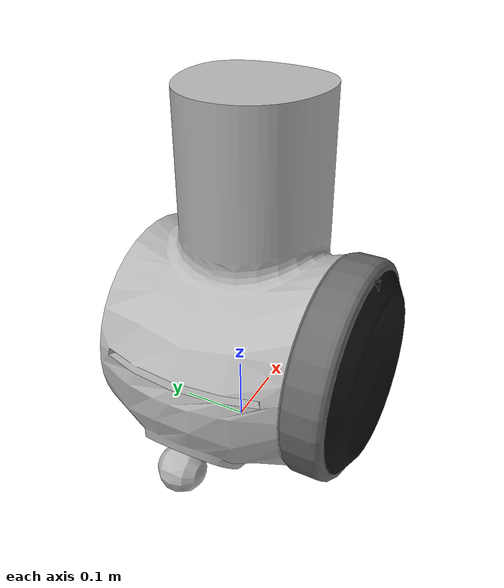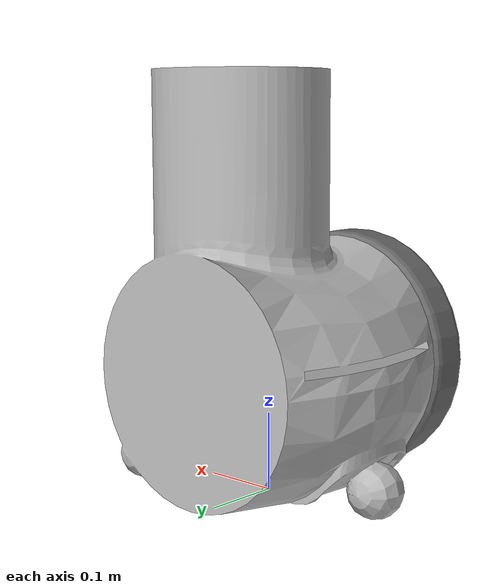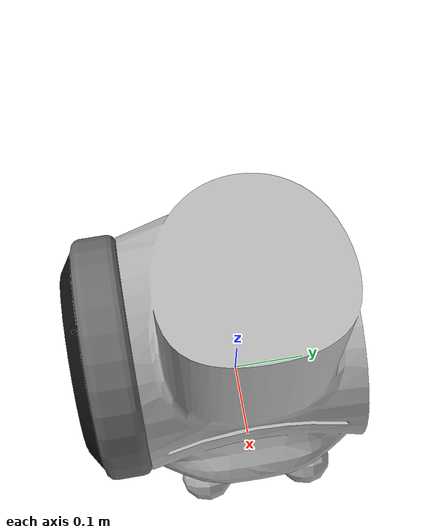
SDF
<?xml version=1.0 ?>
<sdf version='1.6'>
  <model name='SIM_CER_ROBOT'>
    <link name='mobile_base_body_link'>
      <pose frame=''>0 0 0 0 -0 0</pose>
      <inertial>
        <pose frame=''>0.003532 0 0.062803 0 -0 0</pose>
        <mass>14</mass>
        <inertia>
          <ixx>0.342401</ixx>
          <ixy>0</ixy>
          <ixz>-0.0396992</ixz>
          <iyy>0.362542</iyy>
          <iyz>0</iyz>
          <izz>0.168981</izz>
        </inertia>
      </inertial>
      <collision name='mobile_base_body_link_collision'>
        <pose frame=''>0 0 -0.16 0 -0 0</pose>
        <geometry>
          <mesh>
            <scale>0.001 0.001 0.001</scale>
            <uri>model://cer/meshes/obj/sim_cer_mobilebase_body.obj</uri>
          </mesh>
        </geometry>
        <surface>
          <contact>
            <ode/>
          </contact>
          <friction>
            <ode>
              <mu>0</mu>
              <mu2>0</mu2>
            </ode>
          </friction>
        </surface>
      </collision>
      <visual name='mobile_base_body_link_visual'>
        <pose frame=''>0 0 -0.16 0 -0 0</pose>
        <geometry>
          <mesh>
            <scale>0.001 0.001 0.001</scale>
            <uri>model://cer/meshes/obj/sim_cer_mobilebase_body.obj</uri>
          </mesh>
        </geometry>
        <material>
          <script>
            <uri>__default__</uri>
            <name>__default__</name>
          </script>
        </material>
      </visual>
      <velocity_decay/>
      <sensor name='base_laser' type='ray'>
        <always_on>1</always_on>
        <update_rate>40</update_rate>
        <pose frame=''>0.07 0 0.031 0 -0 0</pose>
        <visualize>true</visualize>
        <ray>
          <scan>
            <horizontal>
              <samples>360</samples>
              <resolution>2</resolution>
              <min_angle>0</min_angle>
              <max_angle>6.28</max_angle>
            </horizontal>
          </scan>
          <range>
            <min>0.04</min>
            <max>5</max>
            <resolution>0.01</resolution>
          </range>
          <noise>
            <type>gaussian</type>
            <mean>0</mean>
            <stddev>0.005</stddev>
          </noise>
        </ray>
        <plugin name='lasersensor_front' filename='libgazebo_yarp_lasersensor.so'>
          <yarpConfigurationFile>model://cer/conf/gazebo_cer_lasersensor/gazebo_cer_lasersensor_front.ini</yarpConfigurationFile>
        </plugin>
      </sensor>
      <sensor name='base_laser2' type='ray'>
        <always_on>1</always_on>
        <update_rate>40</update_rate>
        <pose frame=''>-0.085 0 0.031 0 0 3.14159</pose>
        <visualize>true</visualize>
        <ray>
          <scan>
            <horizontal>
              <samples>360</samples>
              <resolution>2</resolution>
              <min_angle>0</min_angle>
              <max_angle>6.28</max_angle>
            </horizontal>
          </scan>
          <range>
            <min>0.04</min>
            <max>5</max>
            <resolution>0.01</resolution>
          </range>
          <noise>
            <type>gaussian</type>
            <mean>0</mean>
            <stddev>0.005</stddev>
          </noise>
        </ray>
        <plugin name='lasersensor_back' filename='libgazebo_yarp_lasersensor.so'>
          <yarpConfigurationFile>model://cer/conf/gazebo_cer_lasersensor/gazebo_cer_lasersensor_back.ini</yarpConfigurationFile>
        </plugin>
      </sensor>

      <gravity>1</gravity>
      <velocity_decay/>
    </link>
    <link name='mobile_base_l_tyre_link'>
      <pose frame=''>0 0.139 0 0 -0 0</pose>
      <inertial>
        <pose frame=''>0 0.034425 9e-06 0 -0 0</pose>
        <mass>3</mass>
        <inertia>
          <ixx>0.0200196</ixx>
          <ixy>0</ixy>
          <ixz>0</ixz>
          <iyy>0.0376169</iyy>
          <iyz>-8.28446e-07</iyz>
          <izz>0.0200156</izz>
        </inertia>
      </inertial>
      <collision name='mobile_base_l_tyre_link_collision'>
        <pose frame=''>0 0.03 0 1.5708 -0 0</pose>
        <geometry>
          <cylinder>
            <length>0.005</length>
            <radius>0.16</radius>
          </cylinder>
        </geometry>
      </collision>
      <visual name='mobile_base_l_tyre_link_visual'>
        <pose frame=''>0 -0.139 -0.16 0 -0 0</pose>
        <geometry>
          <mesh>
            <scale>0.001 0.001 0.001</scale>
            <uri>model://cer/meshes/dae/sim_cer_mobilebase_l_tyre.dae</uri>
          </mesh>
        </geometry>
      </visual>
    </link>
    <joint name='mobile_base_l_wheel_joint' type='revolute'>
      <child>mobile_base_l_tyre_link</child>
      <parent>mobile_base_body_link</parent>
      <axis>
        <xyz>0 1 0</xyz>
        <limit>
          <lower>-1e+16</lower>
          <upper>1e+16</upper>
        </limit>
        <dynamics>
          <damping>0.5</damping>
          <friction>0</friction>
          <spring_reference>0</spring_reference>
          <spring_stiffness>0</spring_stiffness>
        </dynamics>
        <use_parent_model_frame>1</use_parent_model_frame>
      </axis>
      <physics>
        <ode>
          <implicit_spring_damper>1</implicit_spring_damper>
          <cfm_damping>1</cfm_damping>
          <limit>
            <cfm>0</cfm>
            <erp>0.2</erp>
          </limit>
        </ode>
      </physics>
    </joint>
    <link name='mobile_base_r_tyre_link'>
      <pose frame=''>0 -0.139 0 0 -0 0</pose>
      <inertial>
        <pose frame=''>0 -0.034425 9e-06 0 -0 0</pose>
        <mass>3</mass>
        <inertia>
          <ixx>0.0200196</ixx>
          <ixy>0</ixy>
          <ixz>0</ixz>
          <iyy>0.0376169</iyy>
          <iyz>8.28101e-07</iyz>
          <izz>0.0200156</izz>
        </inertia>
      </inertial>
      <collision name='mobile_base_r_tyre_link_collision'>
        <pose frame=''>0 -0.03 0 1.5708 -0 0</pose>
        <geometry>
          <cylinder>
            <length>0.005</length>
            <radius>0.16</radius>
          </cylinder>
        </geometry>
      </collision>
      <visual name='mobile_base_r_tyre_link_visual'>
        <pose frame=''>0 0.139 -0.16 0 -0 0</pose>
        <geometry>
          <mesh>
            <scale>0.001 0.001 0.001</scale>
            <uri>model://cer/meshes/dae/sim_cer_mobilebase_r_tyre.dae</uri>
          </mesh>
        </geometry>
      </visual>
    </link>
    <joint name='mobile_base_r_wheel_joint' type='revolute'>
      <child>mobile_base_r_tyre_link</child>
      <parent>mobile_base_body_link</parent>
      <axis>
        <xyz>0 1 0</xyz>
        <limit>
          <lower>-1e+16</lower>
          <upper>1e+16</upper>
        </limit>
        <dynamics>
          <damping>0.5</damping>
          <friction>0</friction>
          <spring_reference>0</spring_reference>
          <spring_stiffness>0</spring_stiffness>
        </dynamics>
        <use_parent_model_frame>1</use_parent_model_frame>
      </axis>
      <physics>
        <ode>
          <implicit_spring_damper>1</implicit_spring_damper>
          <cfm_damping>1</cfm_damping>
          <limit>
            <cfm>0</cfm>
            <erp>0.2</erp>
          </limit>
        </ode>
      </physics>
    </joint>

    <plugin name='controlboard_mobile_base' filename='libgazebo_yarp_controlboard.so'>
      <yarpConfigurationFile>model://cer/conf/gazebo_cer_mobile_base/gazebo_cer_mobile_base.ini</yarpConfigurationFile>
    </plugin>
    <plugin name='world_interface' filename='libgazebo_yarp_worldinterface.so'>
      <yarpConfigurationFile>model://cer/conf/worldInterface.ini</yarpConfigurationFile>
    </plugin>
    <plugin name='the_double_laser' filename='libgazebo_yarp_doublelaser.so'>
      <yarpConfigurationFile>model://cer/conf/gazebo_cer_doublelaser/gazebo_cer_doublelaser.ini</yarpConfigurationFile>
    </plugin>
    <plugin name="robotinterface" filename="libgazebo_yarp_robotinterface.so">
      <yarpRobotInterfaceConfigurationFile>model://cer_base_only/cer_base_only.xml</yarpRobotInterfaceConfigurationFile>
    </plugin>
    <static>0</static>
    <pose frame=''>0 0 0.16 0 -0 0</pose>
  </model>
</sdf>
